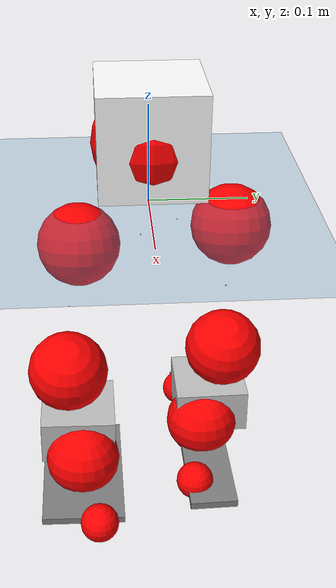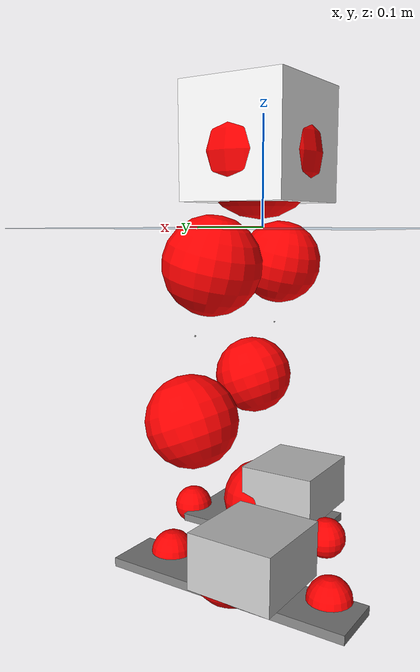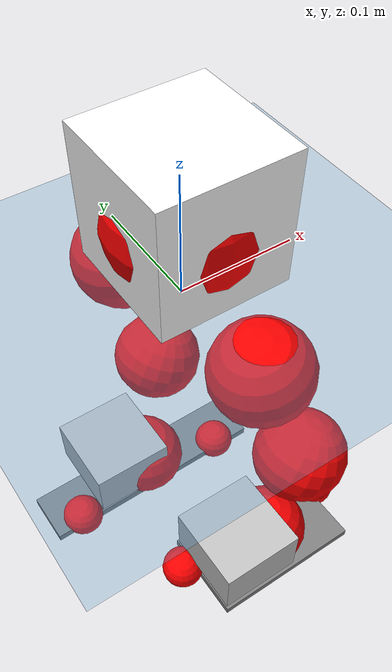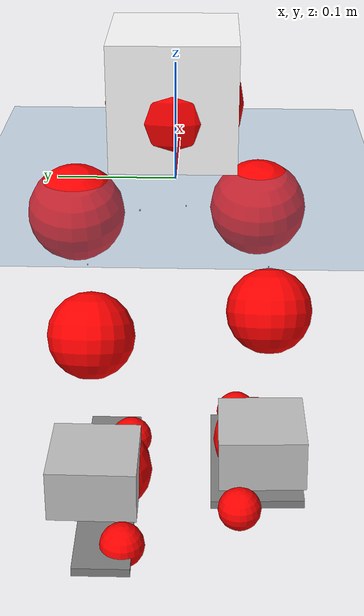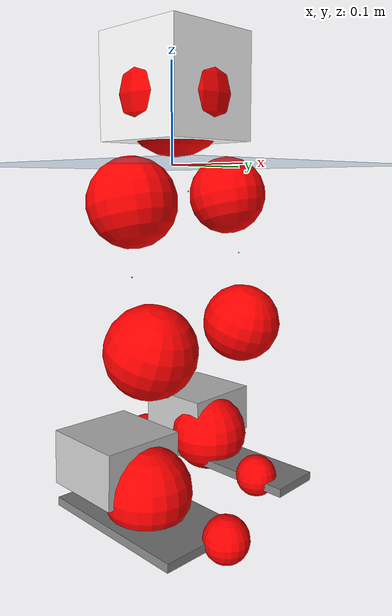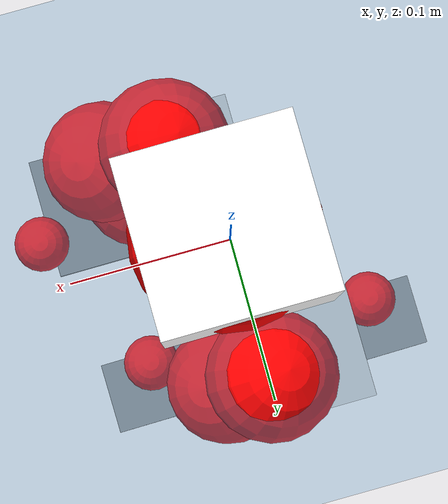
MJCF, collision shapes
<mujoco model="pi_12dof_release_v1">
  <compiler angle="radian" assetdir="assets" balanceinertia="true" inertiafromgeom="false"/>

  <option timestep="0.005" density="1.2" viscosity="2e-05"/>

  <size nkey="1"/>

  <visual>
    <quality shadowsize="8192"/>
    <map shadowclip="0.5"/>
  </visual>

  <default>
    <default class="/">
      <joint armature="0.01" damping="0.01" frictionloss="0.01"/>
      <geom contype="0" conaffinity="0" group="1" solref="-1000 -80"/>
      <site size="0.01 0.005 0.005" group="5"/>
      <general forcelimited="true" biastype="affine" gainprm="20" biasprm="0 -20 -0.5"/>
      <default class="foot">
        <geom size="0.0845 0.036 0.005" type="box" condim="6" group="4" priority="1" friction="0.9 0.2 0.2" solimp="0.015 1 0.005"/>
      </default>
      <default class="reward_collision_sphere">
        <geom group="5" rgba="1 0 0 1"/>
      </default>
    </default>
  </default>

  <asset>
    <texture type="skybox" colorspace="auto" name="//unnamed_texture_0" builtin="gradient" rgb1="0.95 0.95 0.95" rgb2="0.95 0.95 0.95" width="100" height="600"/>
    <texture type="2d" colorspace="auto" name="texplane" builtin="checker" rgb1="0.345 0.575 0.748" rgb2="0.345 0.575 0.748" markrgb="1 1 1" width="512" height="512"/>
    <material name="MatPlane" class="/" texture="texplane" texuniform="true" texrepeat="2 2" specular="0.9"/>
    <mesh name="baselink_1" class="/" file="baselink_1.STL"/>
    <mesh name="r_hip_pitch_link" class="/" file="r_hip_pitch_link.STL"/>
    <mesh name="r_hip_roll_link" class="/" file="r_hip_roll_link.STL"/>
    <mesh name="r_thigh_link" class="/" file="r_thigh_link.STL"/>
    <mesh name="r_calf_link" class="/" file="r_calf_link.STL"/>
    <mesh name="r_ankle_pitch_link" class="/" file="r_ankle_pitch_link.STL"/>
    <mesh name="r_ankle_roll_link" class="/" file="r_ankle_roll_link.STL"/>
    <mesh name="l_hip_pitch_link" class="/" file="l_hip_pitch_link.STL"/>
    <mesh name="l_hip_roll_link" class="/" file="l_hip_roll_link.STL"/>
    <mesh name="l_thigh_link" class="/" file="l_thigh_link.STL"/>
    <mesh name="l_calf_link" class="/" file="l_calf_link.STL"/>
    <mesh name="l_ankle_pitch_link" class="/" file="l_ankle_pitch_link.STL"/>
    <mesh name="l_ankle_roll_link" class="/" file="l_ankle_roll_link.STL"/>
  </asset>

  <worldbody>
    <geom name="floor" class="/" size="100 100 0.125" type="plane" group="0" material="MatPlane"/>
    <light name="toplight_shadow" class="/" pos="0 0 5" dir="0.0990148 0.0990148 -0.990148" type="directional" ambient="0.04 0.04 0.04" diffuse="0.55 0.55 0.55" specular="0.12 0.12 0.12"/>
    <light name="toplight_fill" class="/" pos="0 0 5" dir="0.0990148 0.0990148 -0.990148" type="directional" castshadow="false" ambient="0.04 0.04 0.04" diffuse="0.3 0.3 0.3" specular="0.08 0.08 0.08"/>
    <body name="trunk" pos="0.00340822 0.00119652 -0.00470032" quat="0.999996 -0.000548719 -0.00140911 0.00256825">
      <inertial pos="0.0175888 0.0113139 0.0457201" quat="0.69794 0.0216327 0.016171 0.715647" mass="2.0246" diaginertia="0.0315446 0.00439431 0.00383269"/>
      <joint name="//unnamed_joint_0" type="free"/>
      <geom name="//unnamed_geom_1" class="/" type="mesh" density="0" rgba="1 1 1 1" mesh="baselink_1"/>
      <geom name="//unnamed_geom_2" class="/" size="0.0520006 0.0520006 0.0520006" pos="0 0 0.0792279" type="box" rgba="1 1 1 1"/>
      <geom name="//unnamed_geom_3" class="reward_collision_sphere" size="0.0572006" pos="0 0 0.0693244"/>
      <site name="imu" class="/" pos="-0.0628961 -0.00105792 0.0626162" size="0.0104001"/>
      <camera name="track" class="/" pos="0 -1.73771 0" quat="0.707107 0.707107 0 0" mode="trackcom"/>
      <camera name="ego_camera" class="/" pos="0.0945624 0 0.178263" quat="-0.5 -0.5 0.5 0.5"/>
      <body name="r_hip_pitch_link" pos="0.00981179 -0.00970154 -0.0263051" quat="0.992205 4.99235e-05 -0.124616 -0.000875474">
        <inertial pos="0.002878 -0.0382536 0.000583113" quat="-0.0151795 0.707093 -0.0272848 0.70643" mass="0.450211" diaginertia="0.000413941 6.49131e-05 9.47647e-05"/>
        <joint name="r_hip_pitch_joint" class="/" pos="0 0 0" axis="-0.0243174 -0.999611 -0.0136686" range="-1.75388 1.51317" armature="0.016329" damping="0.0253893" frictionloss="0.0133304"/>
        <geom name="//unnamed_geom_4" class="/" type="mesh" density="0" rgba="0.75294 0.75294 0.75294 1" mesh="r_hip_pitch_link"/>
        <geom name="//unnamed_geom_5" class="/" size="0.000520006 0.000520006 0.000520006" type="box" rgba="0.75294 0.75294 0.75294 1"/>
        <body name="r_hip_roll_link" pos="0.00757644 -0.0626819 -0.00627913" quat="0.999982 -0.00532569 0.00232094 0.00148038">
          <inertial pos="-0.00147889 0.000391312 -0.0674701" quat="0.731255 -0.069655 -0.0464257 0.676949" mass="0.489821" diaginertia="0.00106081 0.000162687 0.000116965"/>
          <joint name="r_hip_roll_joint" class="/" pos="0 0 0" axis="-0.998896 0.0446183 0.0147167" stiffness="0.00913499" range="-0.14221 0.491402" armature="0.0144336" damping="0.0657744" frictionloss="0.00363456"/>
          <geom name="//unnamed_geom_6" class="/" type="mesh" density="0" rgba="0.75294 0.75294 0.75294 1" mesh="r_hip_roll_link"/>
          <geom name="//unnamed_geom_7" class="/" size="0.000520006 0.000520006 0.000520006" type="box" rgba="0.75294 0.75294 0.75294 1"/>
          <geom name="//unnamed_geom_8" class="reward_collision_sphere" size="0.0416005"/>
          <body name="r_thigh_link" pos="-0.00314477 -0.0118552 -0.0662749" quat="0.999999 -0.00134811 9.4234e-05 -0.000613941">
            <inertial pos="0.000452481 -0.00149467 -0.040802" quat="0.736839 0.676053 -0.00373241 0.00250638" mass="0.13218" diaginertia="0.000464048 4.76585e-05 5.47675e-05"/>
            <joint name="r_thigh_joint" class="/" pos="0 0 0" axis="-0.0068542 0.00731283 -0.99995" range="-0.117258 0.629235" armature="0.00311378" damping="0.0234908" frictionloss="0.00695001"/>
            <geom name="//unnamed_geom_9" class="/" type="mesh" density="0" rgba="0.75294 0.75294 0.75294 1" mesh="r_thigh_link"/>
            <geom name="//unnamed_geom_10" class="/" size="0.000520006 0.000520006 0.000520006" type="box" rgba="0.75294 0.75294 0.75294 1"/>
            <body name="r_calf_link" pos="0.0128773 -0.00318346 -0.0668016" quat="0.947711 -1.39056e-05 0.319129 -6.51539e-05">
              <inertial pos="0.00779727 0.0137864 -0.0605946" quat="0.997592 0.0134912 0.064176 0.022592" mass="0.897086" diaginertia="0.0123539 0.0014281 0.000181918"/>
              <joint name="r_calf_joint" class="/" pos="0 0 0" axis="0.0036592 -0.999028 -0.0439373" range="-1.65932 0.53735" armature="0.0140628" damping="0.023467" frictionloss="0.0101882"/>
              <geom name="//unnamed_geom_11" class="/" type="mesh" density="0" rgba="0.75294 0.75294 0.75294 1" mesh="r_calf_link"/>
              <geom name="//unnamed_geom_12" class="/" size="0.000520006 0.000520006 0.000520006" type="box" rgba="0.75294 0.75294 0.75294 1"/>
              <geom name="//unnamed_geom_13" class="reward_collision_sphere" size="0.0416005"/>
              <body name="r_ankle_pitch_link" pos="-0.00700562 0.00714953 -0.127809" quat="0.98038 -0.00515541 -0.197049 0.000635665">
                <inertial pos="-0.00678501 0.0071381 0.00737649" quat="0.0294966 0.700492 -0.027716 0.712512" mass="0.177828" diaginertia="0.00111186 0.000128325 9.89002e-05"/>
                <joint name="r_ankle_pitch_joint" class="/" pos="0 0 0" axis="0.0356316 -0.999039 0.0255221" stiffness="0.0450577" range="-1.53075 0.330027" armature="0.0064721" damping="0.0595783" frictionloss="0.0107917"/>
                <geom name="//unnamed_geom_14" class="/" type="mesh" density="0" rgba="0.75294 0.75294 0.75294 1" mesh="r_ankle_pitch_link"/>
                <geom name="//unnamed_geom_15" class="/" size="0.0405604 0.0416005 0.0260003" type="box" rgba="0.75294 0.75294 0.75294 1"/>
                <body name="r_ankle_roll_link" pos="0.102486 0.00495996 -0.00198088" quat="0.999993 -0.00281097 0.00242153 4.06004e-05">
                  <inertial pos="-0.0201505 0.000326428 -0.0156766" quat="0.585202 0.37022 0.434574 0.575865" mass="0.461195" diaginertia="0.00293215 0.000479899 0.000239469"/>
                  <joint name="r_ankle_roll_joint" class="/" pos="0 0 0" axis="-0.999372 -0.0273195 -0.0225463" range="-0.318944 0.175269" armature="0.00367011" damping="0.00627996" frictionloss="0.00857861"/>
                  <geom name="//unnamed_geom_16" class="/" type="mesh" density="0" rgba="0.75294 0.75294 0.75294 1" mesh="r_ankle_roll_link"/>
                  <geom name="//unnamed_geom_17" class="/" type="mesh" rgba="0.75294 0.75294 0.75294 1" mesh="r_ankle_roll_link"/>
                  <geom name="right_foot" class="foot" size="0.0762592 0.0448998 0.00404929" pos="-0.0643024 0 -0.0435754"/>
                  <geom name="//unnamed_geom_19" class="reward_collision_sphere" size="0.0416005" pos="-0.0630416 0 -0.019807"/>
                  <geom name="//unnamed_geom_20" class="reward_collision_sphere" size="0.0208002" pos="0.0189125 0.0173771 -0.039614"/>
                  <geom name="//unnamed_geom_21" class="reward_collision_sphere" size="0.0208002" pos="-0.1513 0.0173771 -0.039614"/>
                  <site name="right_foot" class="foot" pos="-0.0643024 0 -0.0435754" size="0.0104001"/>
                </body>
              </body>
            </body>
          </body>
        </body>
      </body>
      <body name="l_hip_pitch_link" pos="-0.01171 0.029266 -0.0213896" quat="0.992196 -1.49111e-05 -0.124686 0.000109467">
        <inertial pos="-0.000810848 0.0384149 0.0130591" quat="-0.00180359 0.682097 0.0446473 0.729895" mass="0.364779" diaginertia="0.000279199 4.51501e-05 8.7488e-05"/>
        <joint name="l_hip_pitch_joint" class="/" pos="0 0 0" axis="0.000115762 1 0.000906125" stiffness="0.0424239" range="-1.28763 1.73187" armature="0.0106564" damping="0" frictionloss="0.0148846"/>
        <geom name="//unnamed_geom_22" class="/" type="mesh" density="0" rgba="0.75294 0.75294 0.75294 1" mesh="l_hip_pitch_link"/>
        <geom name="//unnamed_geom_23" class="/" size="0.000520006 0.000520006 0.000520006" type="box" rgba="0.75294 0.75294 0.75294 1"/>
        <body name="l_hip_roll_link" pos="0.00423478 0.0549649 -0.00591486" quat="0.999997 0.00113475 0.000174909 0.00228235">
          <inertial pos="0.0119272 -0.00430042 -0.0469333" quat="0.700902 -0.08023 -0.0774773 0.704483" mass="0.51968" diaginertia="0.00138838 0.000135752 0.000127761"/>
          <joint name="l_hip_roll_joint" class="/" pos="0 0 0" axis="-0.999888 -0.0136827 0.00608949" range="-0.593966 0.167842" armature="0.0121383" damping="0" frictionloss="0.0142415"/>
          <geom name="//unnamed_geom_24" class="/" type="mesh" density="0" rgba="0.75294 0.75294 0.75294 1" mesh="l_hip_roll_link"/>
          <geom name="//unnamed_geom_25" class="/" size="0.000520006 0.000520006 0.000520006" type="box" rgba="0.75294 0.75294 0.75294 1"/>
          <geom name="//unnamed_geom_26" class="reward_collision_sphere" size="0.0416005"/>
          <body name="l_thigh_link" pos="0.00576887 -0.00514411 -0.0642925" quat="1 0.000473074 6.74862e-05 -0.000741195">
            <inertial pos="-0.0067373 -0.012651 -0.0427641" quat="0.692949 0.720265 -0.0286069 0.0148909" mass="0.102389" diaginertia="0.000360529 3.28359e-05 4.2733e-05"/>
            <joint name="l_thigh_joint" class="/" pos="0 0 0" axis="0.00428692 -0.00359501 -0.999984" stiffness="0.0555719" range="-0.342512 0.455119" armature="0.00826539" damping="0.00547777" frictionloss="0.0109291"/>
            <geom name="//unnamed_geom_27" class="/" type="mesh" density="0" rgba="0.75294 0.75294 0.75294 1" mesh="l_thigh_link"/>
            <geom name="//unnamed_geom_28" class="/" size="0.000520006 0.000520006 0.000520006" type="box" rgba="0.75294 0.75294 0.75294 1"/>
            <body name="l_calf_link" pos="-0.0145129 -0.000130048 -0.0750853" quat="0.947646 1.28659e-05 0.319323 7.09418e-06">
              <inertial pos="0.00804936 -0.00375417 -0.0558752" quat="0.997543 0.0107228 0.013068 -0.067986" mass="0.932627" diaginertia="0.0133964 0.00206643 0.000193364"/>
              <joint name="l_calf_joint" class="/" pos="0 0 0" axis="0.0487569 0.998661 0.0172973" range="-0.669594 1.55543" armature="0.0103232" damping="0.0514159" frictionloss="0.00780699"/>
              <geom name="//unnamed_geom_29" class="/" type="mesh" density="0" rgba="0.75294 0.75294 0.75294 1" mesh="l_calf_link"/>
              <geom name="//unnamed_geom_30" class="/" size="0.000520006 0.000520006 0.000520006" type="box" rgba="0.75294 0.75294 0.75294 1"/>
              <geom name="//unnamed_geom_31" class="reward_collision_sphere" size="0.0416005"/>
              <body name="l_ankle_pitch_link" pos="-0.0134238 -0.00470185 -0.126768" quat="0.979748 0.00487021 -0.200164 -0.00192989">
                <inertial pos="0.00637287 -0.00830858 -0.00313074" quat="-0.00339966 0.708625 -0.00307128 0.70557" mass="0.24443" diaginertia="0.00121214 0.000121744 0.000127852"/>
                <joint name="l_ankle_pitch_joint" class="/" pos="0 0 0" axis="-0.00395482 0.999984 -0.00400266" stiffness="0.000636543" range="-0.366573 1.4702" armature="0.0143476" damping="0" frictionloss="0.00748421"/>
                <geom name="//unnamed_geom_32" class="/" type="mesh" density="0" rgba="0.75294 0.75294 0.75294 1" mesh="l_ankle_pitch_link"/>
                <geom name="//unnamed_geom_33" class="/" size="0.0405604 0.0416005 0.0260003" type="box" rgba="0.75294 0.75294 0.75294 1"/>
                <body name="l_ankle_roll_link" pos="0.0919576 -0.0104004 0.00206523" quat="0.99998 -0.000215403 0.00260141 0.00571846">
                  <inertial pos="-0.040643 0.00606965 -0.0181052" quat="0.581244 0.454703 0.427881 0.521842" mass="0.556104" diaginertia="0.00385976 0.000506228 0.000295995"/>
                  <joint name="l_ankle_roll_joint" class="/" pos="0 0 0" axis="-0.99999 -0.00363765 0.00245562" stiffness="0.061904" range="-0.375699 0.328282" armature="0.00452287" damping="0" frictionloss="0.00727273"/>
                  <geom name="//unnamed_geom_34" class="/" type="mesh" density="0" rgba="0.75294 0.75294 0.75294 1" mesh="l_ankle_roll_link"/>
                  <geom name="//unnamed_geom_35" class="/" type="mesh" rgba="0.75294 0.75294 0.75294 1" mesh="l_ankle_roll_link"/>
                  <geom name="left_foot" class="foot" size="0.12032 0.0261553 0.00431298" pos="-0.0643024 0 -0.0435754"/>
                  <geom name="//unnamed_geom_37" class="reward_collision_sphere" size="0.0416005" pos="-0.0630416 0 -0.019807"/>
                  <geom name="//unnamed_geom_38" class="reward_collision_sphere" size="0.0208002" pos="0.0189125 -0.0173771 -0.039614"/>
                  <geom name="//unnamed_geom_39" class="reward_collision_sphere" size="0.0208002" pos="-0.1513 -0.0173771 -0.039614"/>
                  <site name="left_foot" class="foot" pos="-0.0643024 0 -0.0435754" size="0.0104001"/>
                </body>
              </body>
            </body>
          </body>
        </body>
      </body>
    </body>
  </worldbody>

  <contact>
    <pair class="/" geom1="floor" geom2="right_foot" name="//unnamed_contact_1"/>
    <pair class="/" geom1="floor" geom2="left_foot" name="//unnamed_contact_0"/>
  </contact>

  <actuator>
    <general name="r_hip_pitch_joint" class="/" joint="r_hip_pitch_joint" forcerange="-13.3671 13.3671" gainprm="28.4668" biasprm="0 -28.4668 -0.558381"/>
    <general name="r_hip_roll_joint" class="/" joint="r_hip_roll_joint" forcerange="-22.8396 22.8396" gainprm="28.4668" biasprm="0 -28.4668 -0.558381"/>
    <general name="r_thigh_joint" class="/" joint="r_thigh_joint" forcerange="-21.6265 21.6265" gainprm="28.4668" biasprm="0 -28.4668 -0.558381"/>
    <general name="r_calf_joint" class="/" joint="r_calf_joint" forcerange="-11.7339 11.7339" gainprm="28.4668" biasprm="0 -28.4668 -0.558381"/>
    <general name="r_ankle_pitch_joint" class="/" joint="r_ankle_pitch_joint" forcerange="-20.0933 20.0933" gainprm="28.4668" biasprm="0 -28.4668 -0.558381"/>
    <general name="r_ankle_roll_joint" class="/" joint="r_ankle_roll_joint" forcerange="-22.5796 22.5796" gainprm="28.4668" biasprm="0 -28.4668 -0.558381"/>
    <general name="l_hip_pitch_joint" class="/" joint="l_hip_pitch_joint" forcerange="-30.0826 30.0826" gainprm="28.4668" biasprm="0 -28.4668 -0.558381"/>
    <general name="l_hip_roll_joint" class="/" joint="l_hip_roll_joint" forcerange="-32.6011 32.6011" gainprm="28.4668" biasprm="0 -28.4668 -0.558381"/>
    <general name="l_thigh_joint" class="/" joint="l_thigh_joint" forcerange="-25.5645 25.5645" gainprm="28.4668" biasprm="0 -28.4668 -0.558381"/>
    <general name="l_calf_joint" class="/" joint="l_calf_joint" forcerange="-22.4988 22.4988" gainprm="28.4668" biasprm="0 -28.4668 -0.558381"/>
    <general name="l_ankle_pitch_joint" class="/" joint="l_ankle_pitch_joint" forcerange="-14.3902 14.3902" gainprm="28.4668" biasprm="0 -28.4668 -0.558381"/>
    <general name="l_ankle_roll_joint" class="/" joint="l_ankle_roll_joint" forcerange="-23.8393 23.8393" gainprm="28.4668" biasprm="0 -28.4668 -0.558381"/>
  </actuator>

  <sensor>
    <gyro site="imu" name="imu_angular_velocity"/>
    <velocimeter site="imu" name="imu_linear_velocity"/>
    <framelinvel objtype="site" objname="left_foot" name="left_foot_global_linear_velocity"/>
    <framelinvel objtype="site" objname="right_foot" name="right_foot_global_linear_velocity"/>
  </sensor>

  <keyframe>
    <key name="home" qpos="0 0 0.291 1 0 0 0 0.4 0 0 -0.8 0.4 0 -0.4 0 0 0.8 -0.4 0"/>
  </keyframe>
</mujoco>
